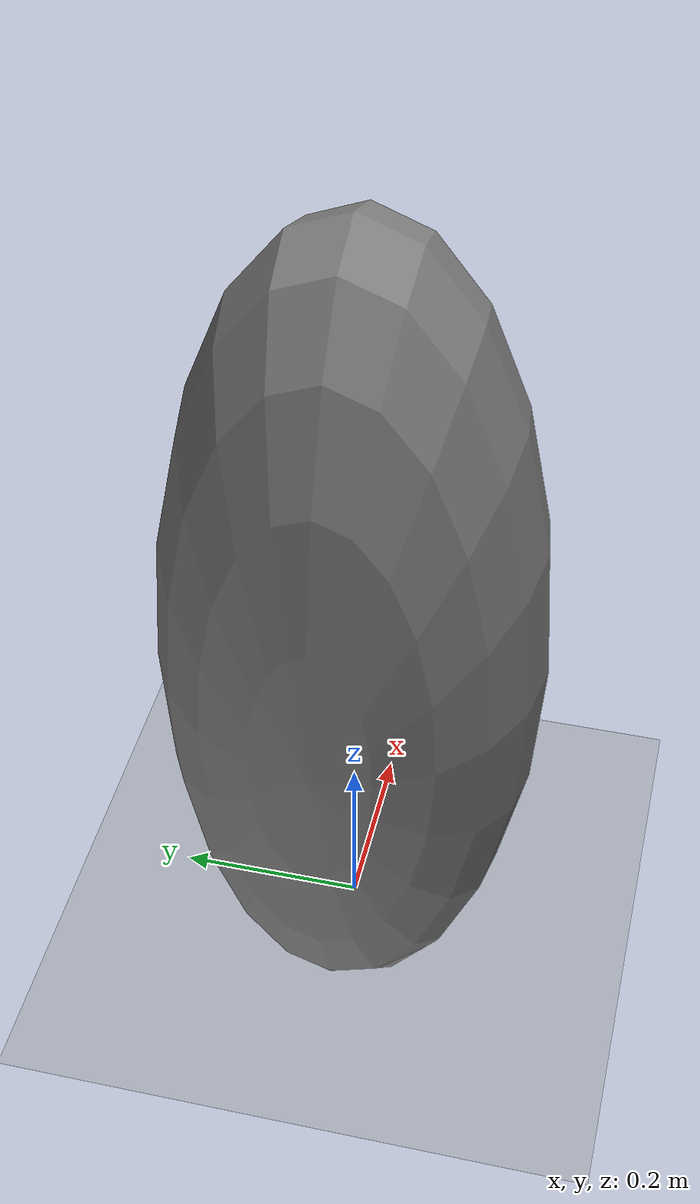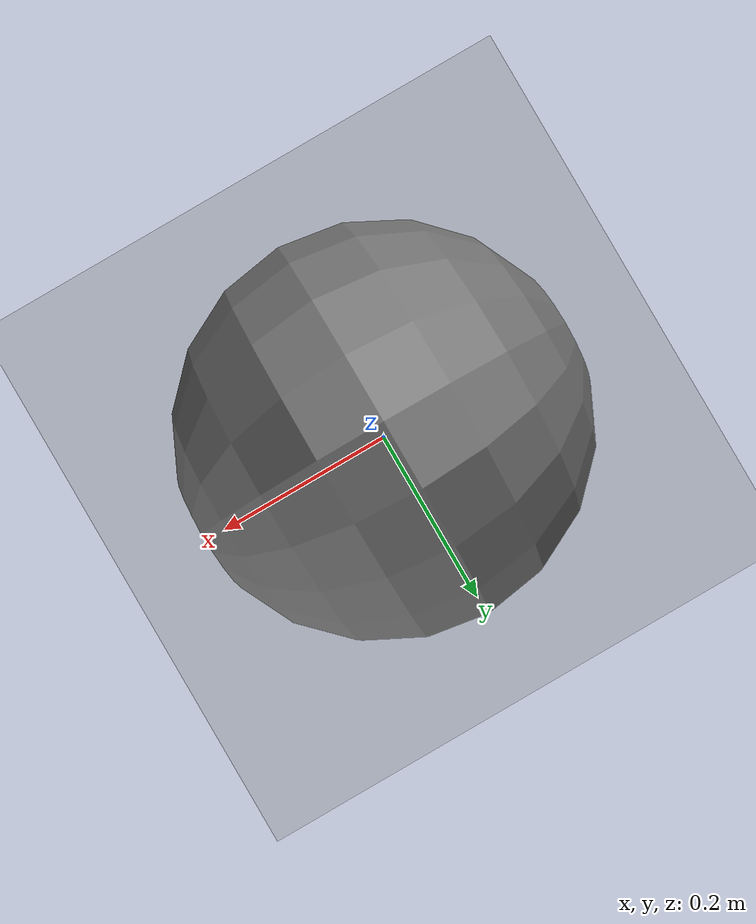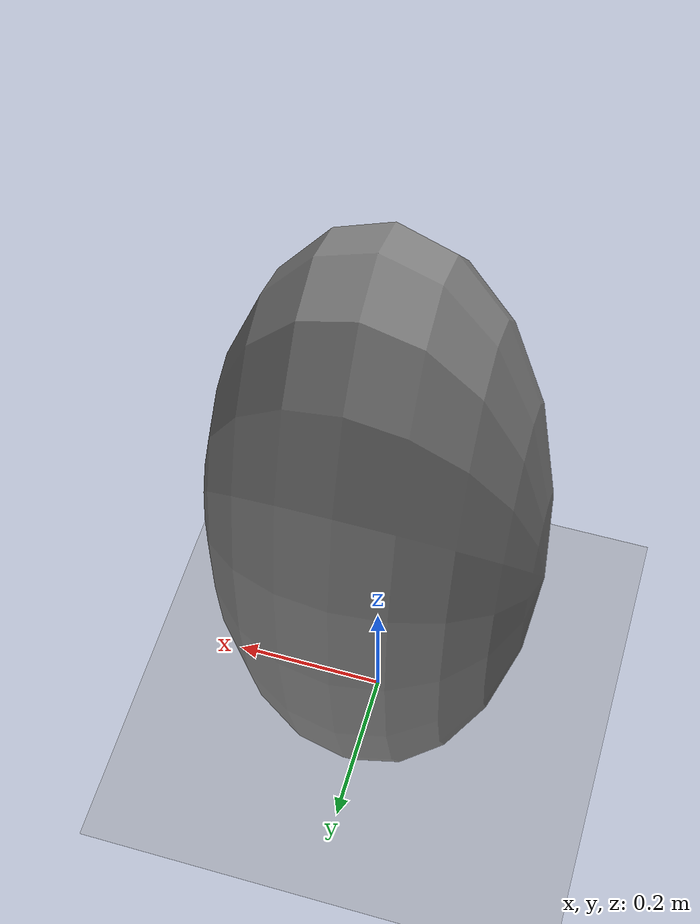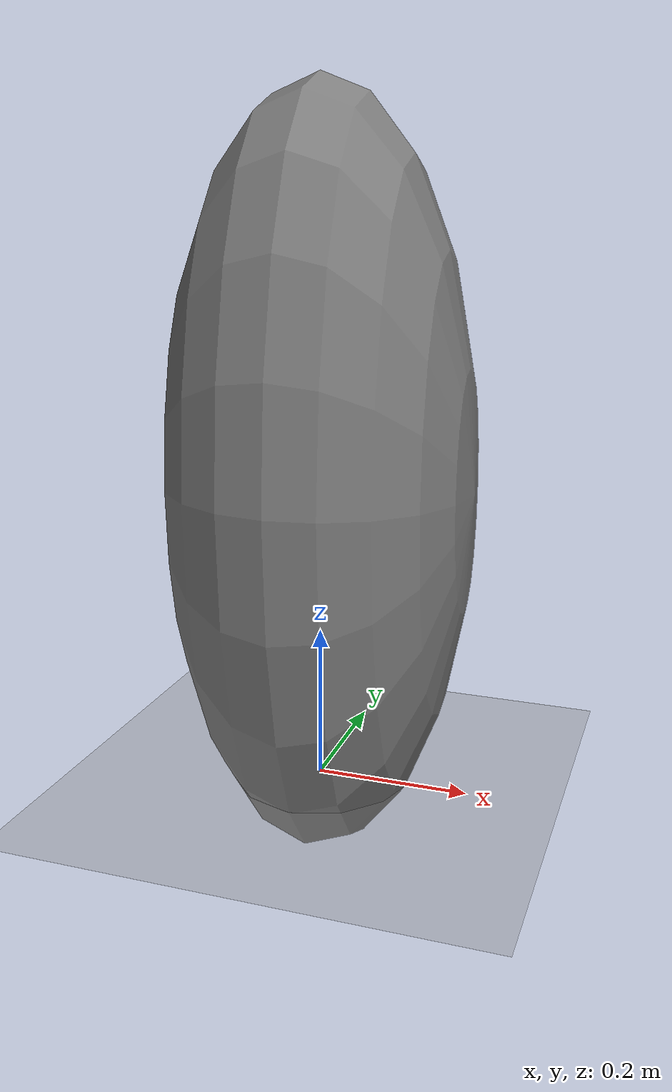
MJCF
<mujoco model="ellipsoid_plane_rotated_vert">
            <option gravity="0 0 0" timestep="0.001"/>
            <worldbody>
                <geom name="floor" type="plane" size="10 10 0.1"/>
                <body name="ell" pos="0 0 0.4" euler="0 90 0">
                    <joint type="free"/>
                    <geom type="ellipsoid" size="0.5 0.2 0.2"/>
                </body>
            </worldbody>
        </mujoco>
